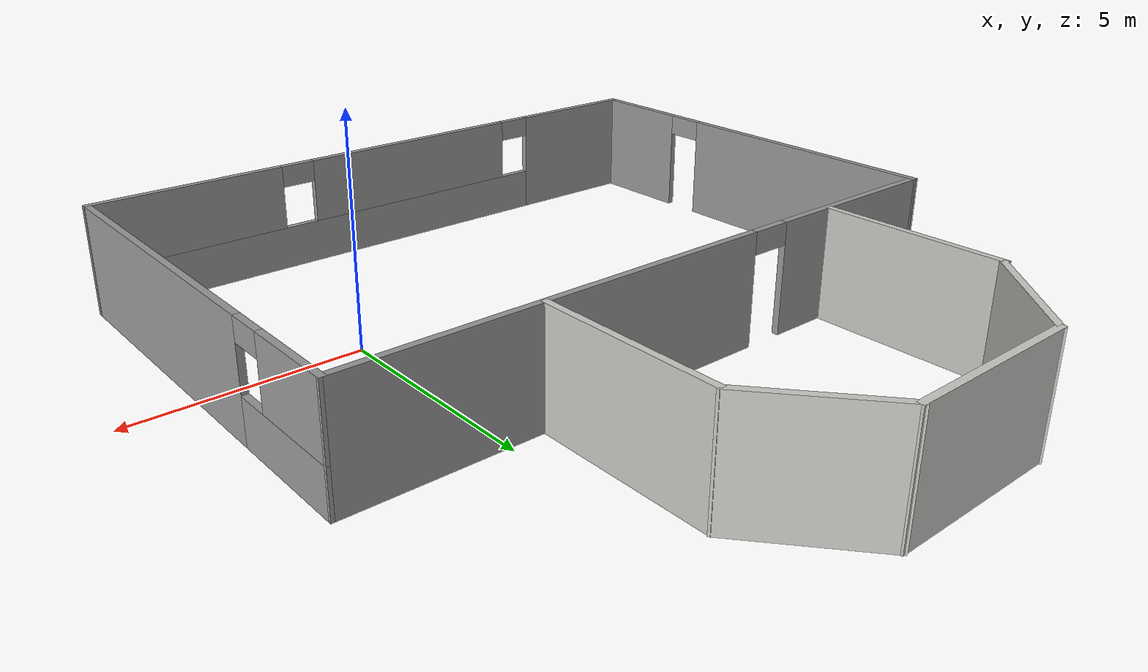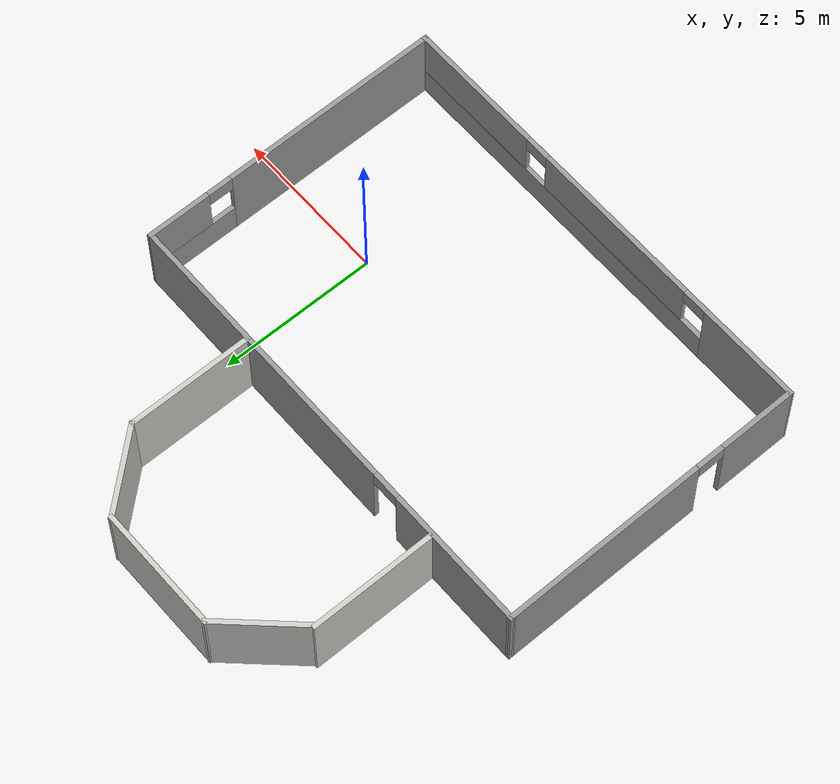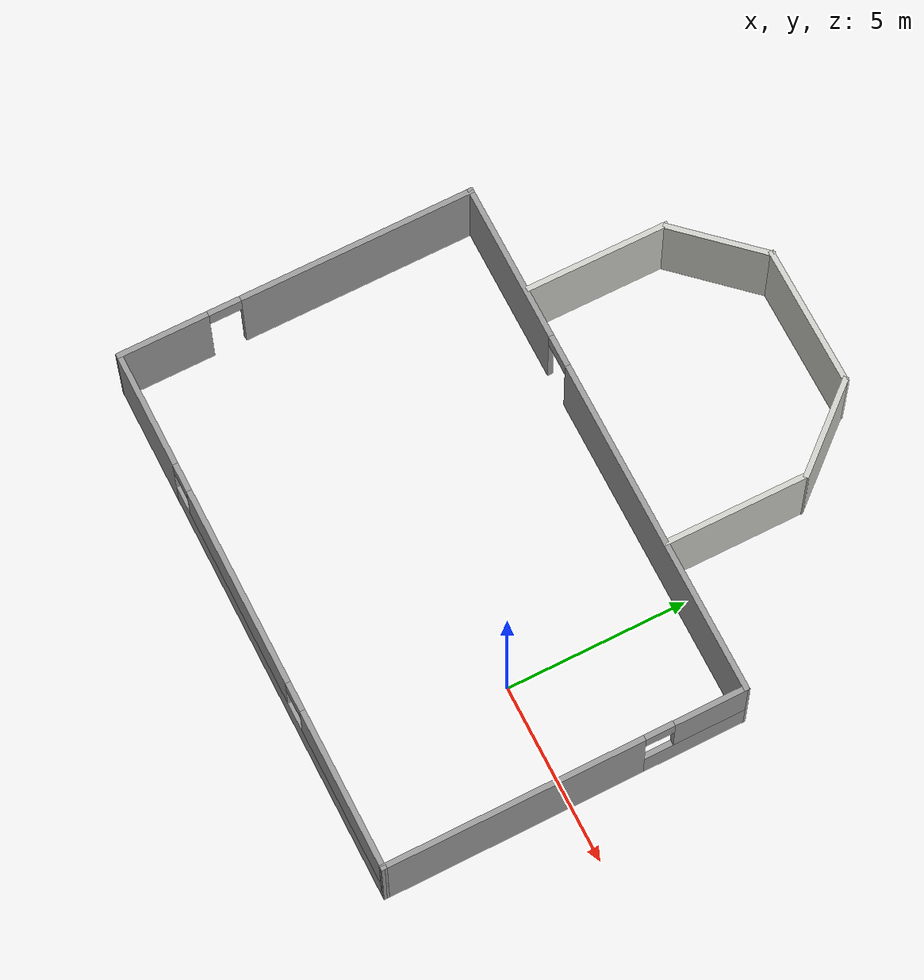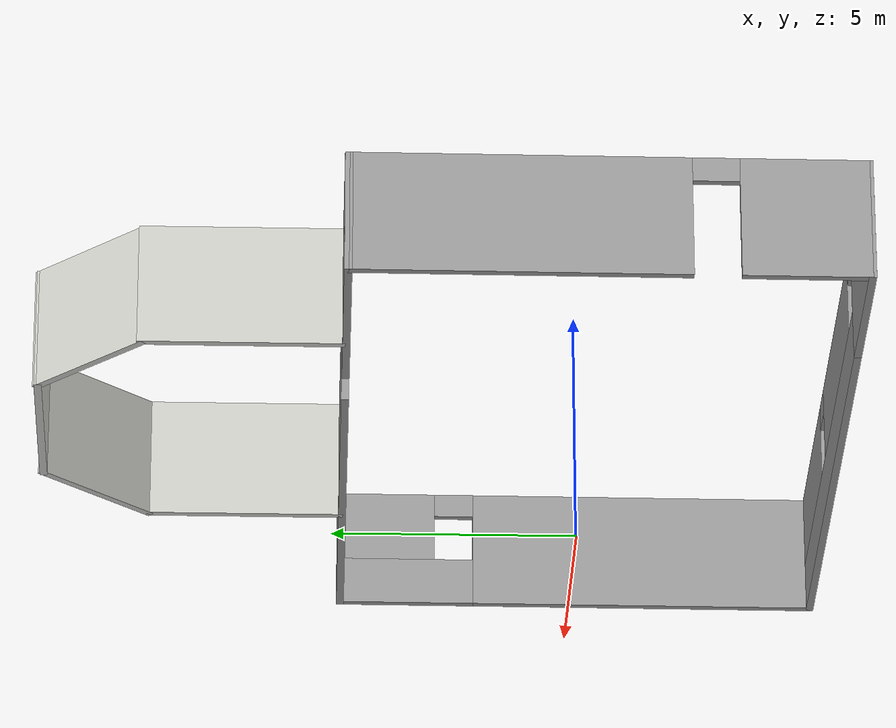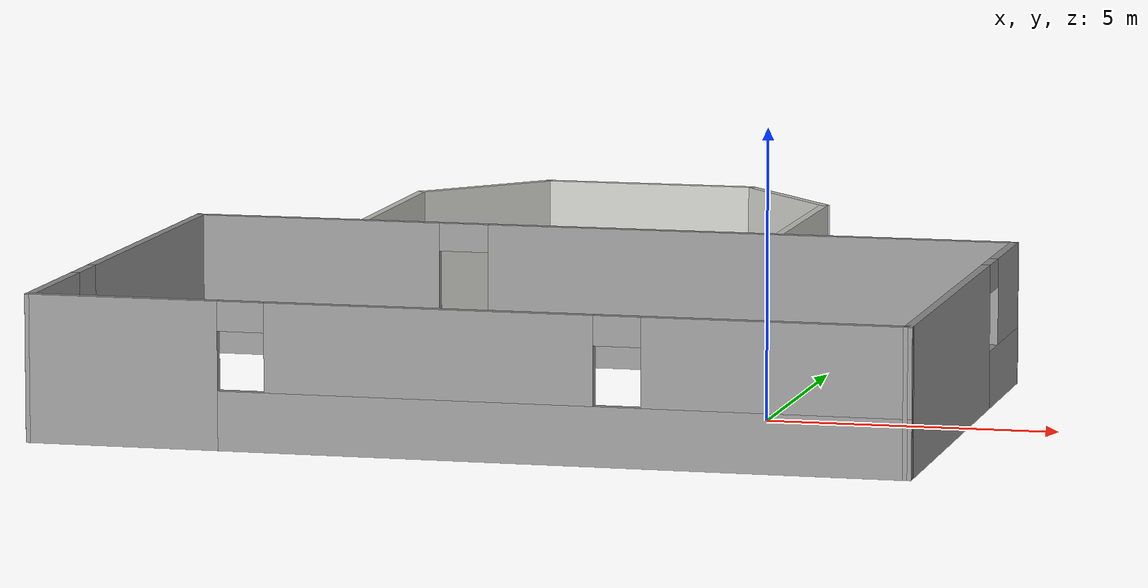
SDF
<?xml version='1.0'?>
<sdf version='1.6'>
  <model name='Hospital_Room'>
    <pose frame=''>-4.04031 2.87685 0 0 -0 0</pose>
    <link name='Wall_0'>
      <pose frame=''>0.023068 -7.9212 0 0 -0 -0.003591</pose>
      <visual name='Wall_0_Visual_0'>
        <pose frame=''>-5.83368 0 1.25 0 -0 0</pose>
        <geometry>
          <box>
            <size>3.33264 0.15 2.5</size>
          </box>
        </geometry>
        <material>
          <script>
            <uri>file://media/materials/scripts/gazebo.material</uri>
            <name>Gazebo/Grey</name>
          </script>
          <ambient>1 1 1 1</ambient>
        </material>
        <meta>
          <layer>0</layer>
        </meta>
      </visual>
      <collision name='Wall_0_Collision_0'>
        <geometry>
          <box>
            <size>3.33264 0.15 2.5</size>
          </box>
        </geometry>
        <pose frame=''>-5.83368 0 1.25 0 -0 0</pose>
      </collision>
      <visual name='Wall_0_Visual_1'>
        <pose frame=''>1.66632 0 0.5 0 -0 0</pose>
        <geometry>
          <box>
            <size>11.6674 0.15 1</size>
          </box>
        </geometry>
        <material>
          <script>
            <uri>file://media/materials/scripts/gazebo.material</uri>
            <name>Gazebo/Grey</name>
          </script>
          <ambient>1 1 1 1</ambient>
        </material>
        <meta>
          <layer>0</layer>
        </meta>
      </visual>
      <collision name='Wall_0_Collision_1'>
        <geometry>
          <box>
            <size>11.6674 0.15 1</size>
          </box>
        </geometry>
        <pose frame=''>1.66632 0 0.5 0 -0 0</pose>
      </collision>
      <visual name='Wall_0_Visual_2'>
        <pose frame=''>-0.574742 0 1.75 0 -0 0</pose>
        <geometry>
          <box>
            <size>5.58524 0.15 1.5</size>
          </box>
        </geometry>
        <material>
          <script>
            <uri>file://media/materials/scripts/gazebo.material</uri>
            <name>Gazebo/Grey</name>
          </script>
          <ambient>1 1 1 1</ambient>
        </material>
        <meta>
          <layer>0</layer>
        </meta>
      </visual>
      <collision name='Wall_0_Collision_2'>
        <geometry>
          <box>
            <size>5.58524 0.15 1.5</size>
          </box>
        </geometry>
        <pose frame=''>-0.574742 0 1.75 0 -0 0</pose>
      </collision>
      <visual name='Wall_0_Visual_3'>
        <pose frame=''>5.25894 0 1.75 0 -0 0</pose>
        <geometry>
          <box>
            <size>4.48212 0.15 1.5</size>
          </box>
        </geometry>
        <material>
          <script>
            <uri>file://media/materials/scripts/gazebo.material</uri>
            <name>Gazebo/Grey</name>
          </script>
          <ambient>1 1 1 1</ambient>
        </material>
        <meta>
          <layer>0</layer>
        </meta>
      </visual>
      <collision name='Wall_0_Collision_3'>
        <geometry>
          <box>
            <size>4.48212 0.15 1.5</size>
          </box>
        </geometry>
        <pose frame=''>5.25894 0 1.75 0 -0 0</pose>
      </collision>
      <visual name='Wall_0_Visual_4'>
        <pose frame=''>-3.76736 0 2.25 0 -0 0</pose>
        <geometry>
          <box>
            <size>0.8 0.15 0.5</size>
          </box>
        </geometry>
        <material>
          <script>
            <uri>file://media/materials/scripts/gazebo.material</uri>
            <name>Gazebo/Grey</name>
          </script>
          <ambient>1 1 1 1</ambient>
        </material>
        <meta>
          <layer>0</layer>
        </meta>
      </visual>
      <collision name='Wall_0_Collision_4'>
        <geometry>
          <box>
            <size>0.8 0.15 0.5</size>
          </box>
        </geometry>
        <pose frame=''>-3.76736 0 2.25 0 -0 0</pose>
      </collision>
      <visual name='Wall_0_Visual_5'>
        <pose frame=''>2.61788 0 2.25 0 -0 0</pose>
        <geometry>
          <box>
            <size>0.8 0.15 0.5</size>
          </box>
        </geometry>
        <material>
          <script>
            <uri>file://media/materials/scripts/gazebo.material</uri>
            <name>Gazebo/Grey</name>
          </script>
          <ambient>1 1 1 1</ambient>
        </material>
        <meta>
          <layer>0</layer>
        </meta>
      </visual>
      <collision name='Wall_0_Collision_5'>
        <geometry>
          <box>
            <size>0.8 0.15 0.5</size>
          </box>
        </geometry>
        <pose frame=''>2.61788 0 2.25 0 -0 0</pose>
      </collision>
    </link>
    <link name='Wall_1'>
      <pose frame=''>7.42506 -3.02292 0 0 -0 1.57548</pose>
      <visual name='Wall_1_Visual_0'>
        <pose frame=''>-1.42771 0 1.25 0 -0 0</pose>
        <geometry>
          <box>
            <size>7.14458 0.15 2.5</size>
          </box>
        </geometry>
        <material>
          <script>
            <uri>file://media/materials/scripts/gazebo.material</uri>
            <name>Gazebo/Grey</name>
          </script>
          <ambient>1 1 1 1</ambient>
        </material>
        <meta>
          <layer>0</layer>
        </meta>
      </visual>
      <collision name='Wall_1_Collision_0'>
        <geometry>
          <box>
            <size>7.14458 0.15 2.5</size>
          </box>
        </geometry>
        <pose frame=''>-1.42771 0 1.25 0 -0 0</pose>
      </collision>
      <visual name='Wall_1_Visual_1'>
        <pose frame=''>3.57229 0 0.5 0 -0 0</pose>
        <geometry>
          <box>
            <size>2.85542 0.15 1</size>
          </box>
        </geometry>
        <material>
          <script>
            <uri>file://media/materials/scripts/gazebo.material</uri>
            <name>Gazebo/Grey</name>
          </script>
          <ambient>1 1 1 1</ambient>
        </material>
        <meta>
          <layer>0</layer>
        </meta>
      </visual>
      <collision name='Wall_1_Collision_1'>
        <geometry>
          <box>
            <size>2.85542 0.15 1</size>
          </box>
        </geometry>
        <pose frame=''>3.57229 0 0.5 0 -0 0</pose>
      </collision>
      <visual name='Wall_1_Visual_2'>
        <pose frame=''>3.97229 0 1.75 0 -0 0</pose>
        <geometry>
          <box>
            <size>2.05542 0.15 1.5</size>
          </box>
        </geometry>
        <material>
          <script>
            <uri>file://media/materials/scripts/gazebo.material</uri>
            <name>Gazebo/Grey</name>
          </script>
          <ambient>1 1 1 1</ambient>
        </material>
        <meta>
          <layer>0</layer>
        </meta>
      </visual>
      <collision name='Wall_1_Collision_2'>
        <geometry>
          <box>
            <size>2.05542 0.15 1.5</size>
          </box>
        </geometry>
        <pose frame=''>3.97229 0 1.75 0 -0 0</pose>
      </collision>
      <visual name='Wall_1_Visual_3'>
        <pose frame=''>2.54458 0 2.25 0 -0 0</pose>
        <geometry>
          <box>
            <size>0.8 0.15 0.5</size>
          </box>
        </geometry>
        <material>
          <script>
            <uri>file://media/materials/scripts/gazebo.material</uri>
            <name>Gazebo/Grey</name>
          </script>
          <ambient>1 1 1 1</ambient>
        </material>
        <meta>
          <layer>0</layer>
        </meta>
      </visual>
      <collision name='Wall_1_Collision_3'>
        <geometry>
          <box>
            <size>0.8 0.15 0.5</size>
          </box>
        </geometry>
        <pose frame=''>2.54458 0 2.25 0 -0 0</pose>
      </collision>
    </link>
    <link name='Wall_13'>
      <collision name='Wall_13_Collision'>
        <geometry>
          <box>
            <size>4 0.15 2.5</size>
          </box>
        </geometry>
        <pose frame=''>0 0 1.25 0 -0 0</pose>
      </collision>
      <visual name='Wall_13_Visual'>
        <pose frame=''>0 0 1.25 0 -0 0</pose>
        <geometry>
          <box>
            <size>4 0.15 2.5</size>
          </box>
        </geometry>
        <material>
          <script>
            <uri>file://media/materials/scripts/gazebo.material</uri>
            <name>Gazebo/CeilingTiled</name>
          </script>
          <ambient>1 1 1 1</ambient>
        </material>
        <meta>
          <layer>0</layer>
        </meta>
      </visual>
      <pose frame=''>-4.38514 3.96612 0 0 -0 1.5708</pose>
    </link>
    <link name='Wall_14'>
      <collision name='Wall_14_Collision'>
        <geometry>
          <box>
            <size>2.91751 0.15 2.5</size>
          </box>
        </geometry>
        <pose frame=''>0 0 1.25 0 -0 0</pose>
      </collision>
      <visual name='Wall_14_Visual'>
        <pose frame=''>0 0 1.25 0 -0 0</pose>
        <geometry>
          <box>
            <size>2.91751 0.15 2.5</size>
          </box>
        </geometry>
        <material>
          <script>
            <uri>file://media/materials/scripts/gazebo.material</uri>
            <name>Gazebo/CeilingTiled</name>
          </script>
          <ambient>1 1 1 1</ambient>
        </material>
        <meta>
          <layer>0</layer>
        </meta>
      </visual>
      <pose frame=''>-3.40219 6.90413 0 0 -0 0.821445</pose>
    </link>
    <link name='Wall_15'>
      <collision name='Wall_15_Collision'>
        <geometry>
          <box>
            <size>4 0.15 2.5</size>
          </box>
        </geometry>
        <pose frame=''>0 0 1.25 0 -0 0</pose>
      </collision>
      <visual name='Wall_15_Visual'>
        <pose frame=''>0 0 1.25 0 -0 0</pose>
        <geometry>
          <box>
            <size>4 0.15 2.5</size>
          </box>
        </geometry>
        <material>
          <script>
            <uri>file://media/materials/scripts/gazebo.material</uri>
            <name>Gazebo/CeilingTiled</name>
          </script>
          <ambient>1 1 1 1</ambient>
        </material>
        <meta>
          <layer>0</layer>
        </meta>
      </visual>
      <pose frame=''>-0.534694 7.91715 0 0 -0 0</pose>
    </link>
    <link name='Wall_16'>
      <collision name='Wall_16_Collision'>
        <geometry>
          <box>
            <size>2.89764 0.15 2.5</size>
          </box>
        </geometry>
        <pose frame=''>0 0 1.25 0 -0 0</pose>
      </collision>
      <visual name='Wall_16_Visual'>
        <pose frame=''>0 0 1.25 0 -0 0</pose>
        <geometry>
          <box>
            <size>2.89764 0.15 2.5</size>
          </box>
        </geometry>
        <material>
          <script>
            <uri>file://media/materials/scripts/gazebo.material</uri>
            <name>Gazebo/CeilingTiled</name>
          </script>
          <ambient>1 1 1 1</ambient>
        </material>
        <meta>
          <layer>0</layer>
        </meta>
      </visual>
      <pose frame=''>2.29431 6.88267 0 0 -0 -0.852606</pose>
    </link>
    <link name='Wall_17'>
      <collision name='Wall_17_Collision'>
        <geometry>
          <box>
            <size>4 0.15 2.5</size>
          </box>
        </geometry>
        <pose frame=''>0 0 1.25 0 -0 0</pose>
      </collision>
      <visual name='Wall_17_Visual'>
        <pose frame=''>0 0 1.25 0 -0 0</pose>
        <geometry>
          <box>
            <size>4 0.15 2.5</size>
          </box>
        </geometry>
        <material>
          <script>
            <uri>file://media/materials/scripts/gazebo.material</uri>
            <name>Gazebo/CeilingTiled</name>
          </script>
          <ambient>1 1 1 1</ambient>
        </material>
        <meta>
          <layer>0</layer>
        </meta>
      </visual>
      <pose frame=''>3.19831 3.88273 0 0 -0 -1.5708</pose>
    </link>
    <link name='Wall_2'>
      <pose frame=''>-0.023068 1.92869 0 0 -0 3.138</pose>
      <visual name='Wall_2_Visual_0'>
        <pose frame=''>-2.72208 0 1.25 0 -0 0</pose>
        <geometry>
          <box>
            <size>9.55585 0.15 2.5</size>
          </box>
        </geometry>
        <material>
          <script>
            <uri>file://media/materials/scripts/gazebo.material</uri>
            <name>Gazebo/Grey</name>
          </script>
          <ambient>1 1 1 1</ambient>
        </material>
        <meta>
          <layer>0</layer>
        </meta>
      </visual>
      <collision name='Wall_2_Collision_0'>
        <geometry>
          <box>
            <size>9.55585 0.15 2.5</size>
          </box>
        </geometry>
        <pose frame=''>-2.72208 0 1.25 0 -0 0</pose>
      </collision>
      <visual name='Wall_2_Visual_1'>
        <pose frame=''>5.22792 0 1.25 0 -0 0</pose>
        <geometry>
          <box>
            <size>4.54415 0.15 2.5</size>
          </box>
        </geometry>
        <material>
          <script>
            <uri>file://media/materials/scripts/gazebo.material</uri>
            <name>Gazebo/Grey</name>
          </script>
          <ambient>1 1 1 1</ambient>
        </material>
        <meta>
          <layer>0</layer>
        </meta>
      </visual>
      <collision name='Wall_2_Collision_1'>
        <geometry>
          <box>
            <size>4.54415 0.15 2.5</size>
          </box>
        </geometry>
        <pose frame=''>5.22792 0 1.25 0 -0 0</pose>
      </collision>
      <visual name='Wall_2_Visual_2'>
        <pose frame=''>2.50585 0 2.25 0 -0 0</pose>
        <geometry>
          <box>
            <size>0.9 0.15 0.5</size>
          </box>
        </geometry>
        <material>
          <script>
            <uri>file://media/materials/scripts/gazebo.material</uri>
            <name>Gazebo/Grey</name>
          </script>
          <ambient>1 1 1 1</ambient>
        </material>
        <meta>
          <layer>0</layer>
        </meta>
      </visual>
      <collision name='Wall_2_Collision_2'>
        <geometry>
          <box>
            <size>0.9 0.15 0.5</size>
          </box>
        </geometry>
        <pose frame=''>2.50585 0 2.25 0 -0 0</pose>
      </collision>
    </link>
    <link name='Wall_20'>
      <pose frame=''>-7.42506 -2.96959 0 0 -0 -1.56611</pose>
      <visual name='Wall_20_Visual_0'>
        <pose frame=''>-1.71575 0 1.25 0 -0 0</pose>
        <geometry>
          <box>
            <size>6.5685 0.15 2.5</size>
          </box>
        </geometry>
        <material>
          <script>
            <uri>file://media/materials/scripts/gazebo.material</uri>
            <name>Gazebo/Grey</name>
          </script>
          <ambient>1 1 1 1</ambient>
        </material>
        <meta>
          <layer>0</layer>
        </meta>
      </visual>
      <collision name='Wall_20_Collision_0'>
        <geometry>
          <box>
            <size>6.5685 0.15 2.5</size>
          </box>
        </geometry>
        <pose frame=''>-1.71575 0 1.25 0 -0 0</pose>
      </collision>
      <visual name='Wall_20_Visual_1'>
        <pose frame=''>3.73425 0 1.25 0 -0 0</pose>
        <geometry>
          <box>
            <size>2.5315 0.15 2.5</size>
          </box>
        </geometry>
        <material>
          <script>
            <uri>file://media/materials/scripts/gazebo.material</uri>
            <name>Gazebo/Grey</name>
          </script>
          <ambient>1 1 1 1</ambient>
        </material>
        <meta>
          <layer>0</layer>
        </meta>
      </visual>
      <collision name='Wall_20_Collision_1'>
        <geometry>
          <box>
            <size>2.5315 0.15 2.5</size>
          </box>
        </geometry>
        <pose frame=''>3.73425 0 1.25 0 -0 0</pose>
      </collision>
      <visual name='Wall_20_Visual_2'>
        <pose frame=''>2.0185 0 2.25 0 -0 0</pose>
        <geometry>
          <box>
            <size>0.9 0.15 0.5</size>
          </box>
        </geometry>
        <material>
          <script>
            <uri>file://media/materials/scripts/gazebo.material</uri>
            <name>Gazebo/Grey</name>
          </script>
          <ambient>1 1 1 1</ambient>
        </material>
        <meta>
          <layer>0</layer>
        </meta>
      </visual>
      <collision name='Wall_20_Collision_2'>
        <geometry>
          <box>
            <size>0.9 0.15 0.5</size>
          </box>
        </geometry>
        <pose frame=''>2.0185 0 2.25 0 -0 0</pose>
      </collision>
    </link>
    <static>1</static>
  </model>
</sdf>
